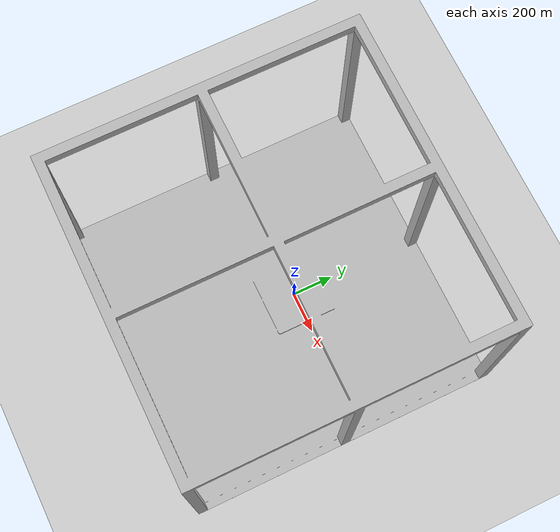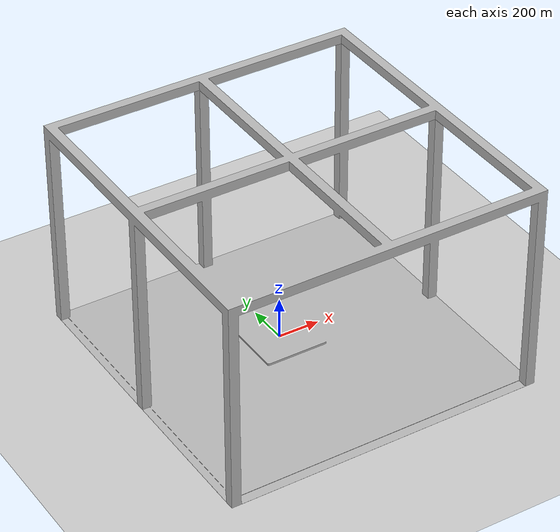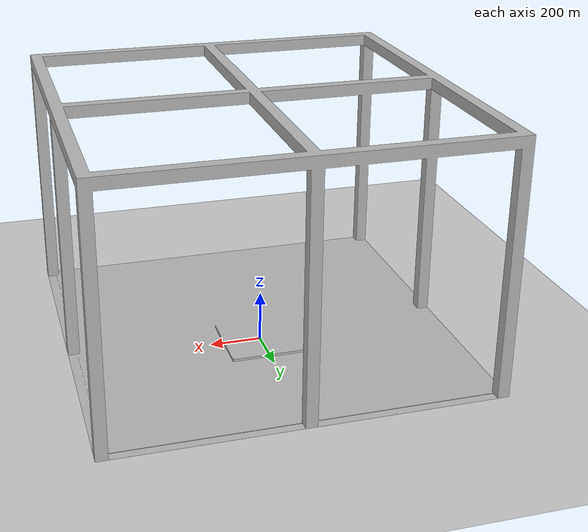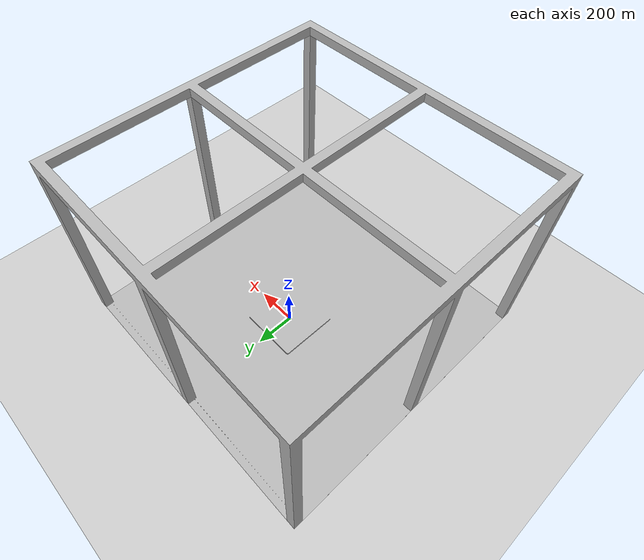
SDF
<?xml version="1.0"?>
<sdf version="1.4">
  <world name="default">
    <include>
      <uri>model://ground_plane</uri>
    </include>
    <include>
      <uri>model://sun</uri>
    </include>
    <model name="base_link">
      <pose>0 0 0  0 0 0</pose>
      <static>true</static>
      <link name="body">
        <visual name="visual">
          <geometry>
            <mesh><uri>file://base_link.dae</uri></mesh>
          </geometry>
        </visual>
      </link>
    </model>
  </world>
</sdf>
